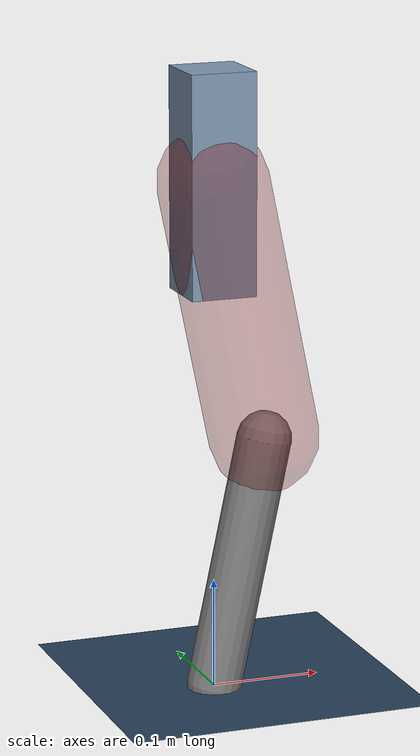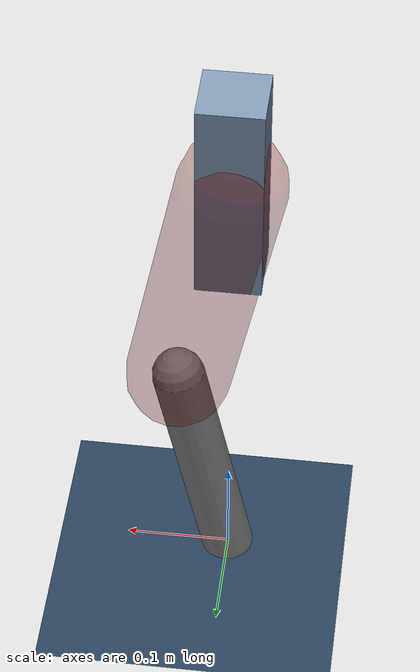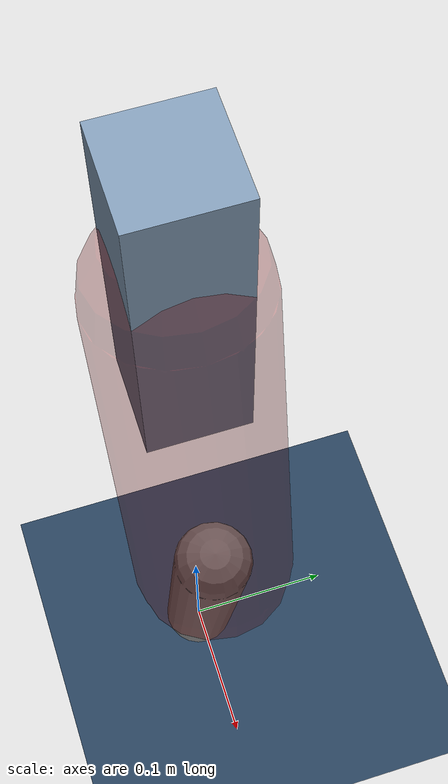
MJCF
<mujoco model="Hopper2D">
	<compiler inertiafromgeom="true" angle="radian" />
	<option timestep="0.001" integrator="implicit" cone="elliptic" solver="Newton" tolerance="1e-10" />

	<default>
		<geom contype="1" conaffinity="1" condim="3" friction="2 0.005 0.0001" solref="0.005 1" />
		<joint limited="true" damping="0.1" />
	</default>

	<asset>
		<texture name="skybox" type="skybox" builtin="gradient" rgb1=".4 .6 .8" rgb2="0 0 0" width="800" height="800" />
		<texture name="grid" type="2d" builtin="checker" rgb1=".1 .2 .3" rgb2=".2 .3 .4" width="300" height="300" mark="edge" markrgb=".2 .3 .4" />
		<material name="ground" texture="grid" texrepeat="1 1" texuniform="true" reflectance="0.1" />
		<material name="leg" rgba="0.5 0.6 0.7 1" />
	</asset>

	<worldbody>

		<geom name="floor" type="plane" size="5 5 0.25" material="ground" />

		<light directional="false" diffuse="0.8 0.8 0.8" specular="0.3 0.3 0.3" pos="0 0 2" dir="0 0 -1" />
		<light mode="targetbodycom" target="base" directional="false" diffuse="0.8 0.8 0.8" specular="0.3 0.3 0.3" pos="0 0 2" dir="0 0 -1" />

		<camera name="fixed" pos="0 -2 1" xyaxes="1 0 0 0 0 1" />
		<camera name="tracking" mode="trackcom" pos="0 -3 1" />

		<body name="root" pos="0 0 0.467445076654744">
			<joint name="slide_x" type="slide" axis="1 0 0" range="-100 100" />
			<joint name="slide_z" type="slide" axis="0 0 1" range="0 10" />

			<body name="base" pos="0 0 0">
				<geom name="torso" type="box" size="0.03 0.03 0.1" mass="3.012" material="leg" />

				<body name="link1" pos="0 0 0" euler="0 1.36947165454563 0">
					<joint type="hinge" axis="0 -1 0" pos="0 0 0" name="hinge1" limited="true" range="-3.14 3.14" stiffness="0" damping="0.1" />
					<geom name="thigh" type="capsule" fromto="0 0 0 0.24301229826641296 0 0" size="0.05" rgba="0.5 0 0 0.3" mass="0.8383319754926738" />

					<body name="link2" pos="0.24301229826641296 0 0" euler="0 0.4101241650989226 0">
						<joint type="hinge" axis="0 -1 0" pos="0 0 0" name="hinge2" limited="true" range="-3.14 3.14" stiffness="0" damping="0.1" />
						<geom name="shank" type="capsule" fromto="0 0 0 0.23443277838833104 0 0" size="0.025" mass="0.4296462227106648" />

					</body>
				</body>
			</body>
		</body>
	</worldbody>

	<actuator>
		<motor name="torque1" joint="hinge1" ctrlrange="-102.91553644473724 102.91553644473724" ctrllimited="true" gear="1" />
		<motor name="torque2" joint="hinge2" ctrlrange="-141.98999608743097 141.98999608743097" ctrllimited="true" gear="1" />
	</actuator>
</mujoco>
